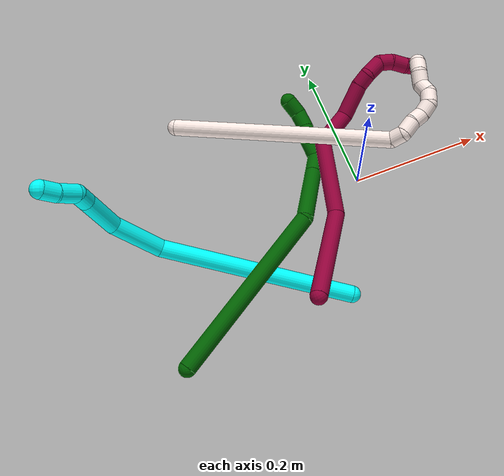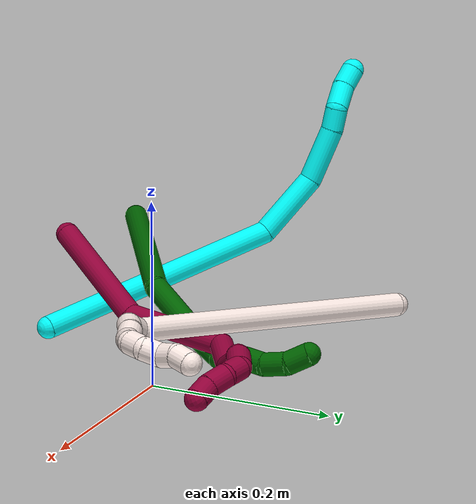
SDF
<sdf version="1.7">
 <world name="default">
  <model name="3">
   <static>0</static>
   <link name="3">
    <collision name="collision-cylinder-e_1_1_4">
     <pose>-0.042562 0.01414 0.134928 -0.104414 -0.304003 0.016009</pose>
     <geometry><cylinder><radius>0.0125</radius><length>0.284373</length></cylinder></geometry>
     <surface>
      <friction><ode><mu>1.16</mu><mu2>1.16</mu2><slip1>0</slip1><slip2>0</slip2></ode></friction>
      <contact><ode><kp>1e+06</kp><kd>1</kd><max_vel>0</max_vel><min_depth>0.001</min_depth></ode></contact>
     </surface>
    </collision>
    <visual name="visual-cylinder-e_1_1_4">
     <pose>-0.042562 0.01414 0.134928 -0.104414 -0.304003 0.016009</pose>
     <geometry><cylinder><radius>0.0125</radius><length>0.284373</length></cylinder></geometry>
     <material><ambient>0.003922 1 0.996078 1</ambient></material>
    </visual>
    <collision name="collision-cylinder-e_2_4_5">
     <pose>-0.107369 0.046316 0.296555 -0.594123 -0.60422 0.190228</pose>
     <geometry><cylinder><radius>0.0125</radius><length>0.078307</length></cylinder></geometry>
     <surface>
      <friction><ode><mu>1.16</mu><mu2>1.16</mu2><slip1>0</slip1><slip2>0</slip2></ode></friction>
      <contact><ode><kp>1e+06</kp><kd>1</kd><max_vel>0</max_vel><min_depth>0.001</min_depth></ode></contact>
     </surface>
    </collision>
    <visual name="visual-cylinder-e_2_4_5">
     <pose>-0.107369 0.046316 0.296555 -0.594123 -0.60422 0.190228</pose>
     <geometry><cylinder><radius>0.0125</radius><length>0.078307</length></cylinder></geometry>
     <material><ambient>0.003922 1 0.996078 1</ambient></material>
    </visual>
    <collision name="collision-cylinder-e_3_5_6">
     <pose>-0.150773 0.084504 0.333492 -1.10075 -0.752487 0.475663</pose>
     <geometry><cylinder><radius>0.0125</radius><length>0.061923</length></cylinder></geometry>
     <surface>
      <friction><ode><mu>1.16</mu><mu2>1.16</mu2><slip1>0</slip1><slip2>0</slip2></ode></friction>
      <contact><ode><kp>1e+06</kp><kd>1</kd><max_vel>0</max_vel><min_depth>0.001</min_depth></ode></contact>
     </surface>
    </collision>
    <visual name="visual-cylinder-e_3_5_6">
     <pose>-0.150773 0.084504 0.333492 -1.10075 -0.752487 0.475663</pose>
     <geometry><cylinder><radius>0.0125</radius><length>0.061923</length></cylinder></geometry>
     <material><ambient>0.003922 1 0.996078 1</ambient></material>
    </visual>
    <collision name="collision-cylinder-e_4_6_7">
     <pose>-0.179329 0.113946 0.346058 -1.32514 -0.657391 0.52017</pose>
     <geometry><cylinder><radius>0.0125</radius><length>0.024204</length></cylinder></geometry>
     <surface>
      <friction><ode><mu>1.16</mu><mu2>1.16</mu2><slip1>0</slip1><slip2>0</slip2></ode></friction>
      <contact><ode><kp>1e+06</kp><kd>1</kd><max_vel>0</max_vel><min_depth>0.001</min_depth></ode></contact>
     </surface>
    </collision>
    <visual name="visual-cylinder-e_4_6_7">
     <pose>-0.179329 0.113946 0.346058 -1.32514 -0.657391 0.52017</pose>
     <geometry><cylinder><radius>0.0125</radius><length>0.024204</length></cylinder></geometry>
     <material><ambient>0.003922 1 0.996078 1</ambient></material>
    </visual>
    <collision name="collision-cylinder-e_5_7_8">
     <pose>-0.189644 0.134137 0.357057 -0.898857 -0.206656 0.099954</pose>
     <geometry><cylinder><radius>0.0125</radius><length>0.028456</length></cylinder></geometry>
     <surface>
      <friction><ode><mu>1.16</mu><mu2>1.16</mu2><slip1>0</slip1><slip2>0</slip2></ode></friction>
      <contact><ode><kp>1e+06</kp><kd>1</kd><max_vel>0</max_vel><min_depth>0.001</min_depth></ode></contact>
     </surface>
    </collision>
    <visual name="visual-cylinder-e_5_7_8">
     <pose>-0.189644 0.134137 0.357057 -0.898857 -0.206656 0.099954</pose>
     <geometry><cylinder><radius>0.0125</radius><length>0.028456</length></cylinder></geometry>
     <material><ambient>0.003922 1 0.996078 1</ambient></material>
    </visual>
    <collision name="collision-cylinder-e_6_8_2">
     <pose>-0.19664 0.152291 0.37347 -0.752837 -0.366816 0.146376</pose>
     <geometry><cylinder><radius>0.0125</radius><length>0.022737</length></cylinder></geometry>
     <surface>
      <friction><ode><mu>1.16</mu><mu2>1.16</mu2><slip1>0</slip1><slip2>0</slip2></ode></friction>
      <contact><ode><kp>1e+06</kp><kd>1</kd><max_vel>0</max_vel><min_depth>0.001</min_depth></ode></contact>
     </surface>
    </collision>
    <visual name="visual-cylinder-e_6_8_2">
     <pose>-0.19664 0.152291 0.37347 -0.752837 -0.366816 0.146376</pose>
     <geometry><cylinder><radius>0.0125</radius><length>0.022737</length></cylinder></geometry>
     <material><ambient>0.003922 1 0.996078 1</ambient></material>
    </visual>
    <collision name="collision-sphere-2">
     <pose>-0.200718 0.159546 0.381214 0 -0 0</pose>
     <geometry><sphere><radius>0.0125</radius></sphere></geometry>
     <surface>
      <friction><ode><mu>1.16</mu><mu2>1.16</mu2><slip1>0</slip1><slip2>0</slip2></ode></friction>
      <contact><ode><kp>1e+06</kp><kd>1</kd><max_vel>0</max_vel><min_depth>0.001</min_depth></ode></contact>
     </surface>
    </collision>
    <visual name="visual-sphere-2">
     <pose>-0.200718 0.159546 0.381214 0 -0 0</pose>
     <geometry><sphere><radius>0.0125</radius></sphere></geometry>
     <material><ambient>0.003922 1 0.996078 1</ambient></material>
    </visual>
    <collision name="collision-sphere-4">
     <pose>-0.085125 0.02828 0.269855 0 -0 0</pose>
     <geometry><sphere><radius>0.0125</radius></sphere></geometry>
     <surface>
      <friction><ode><mu>1.16</mu><mu2>1.16</mu2><slip1>0</slip1><slip2>0</slip2></ode></friction>
      <contact><ode><kp>1e+06</kp><kd>1</kd><max_vel>0</max_vel><min_depth>0.001</min_depth></ode></contact>
     </surface>
    </collision>
    <visual name="visual-sphere-4">
     <pose>-0.085125 0.02828 0.269855 0 -0 0</pose>
     <geometry><sphere><radius>0.0125</radius></sphere></geometry>
     <material><ambient>0.003922 1 0.996078 1</ambient></material>
    </visual>
    <collision name="collision-sphere-1">
     <geometry><sphere><radius>0.0125</radius></sphere></geometry>
     <surface>
      <friction><ode><mu>1.16</mu><mu2>1.16</mu2><slip1>0</slip1><slip2>0</slip2></ode></friction>
      <contact><ode><kp>1e+06</kp><kd>1</kd><max_vel>0</max_vel><min_depth>0.001</min_depth></ode></contact>
     </surface>
    </collision>
    <visual name="visual-sphere-1">
     <geometry><sphere><radius>0.0125</radius></sphere></geometry>
     <material><ambient>0.003922 1 0.996078 1</ambient></material>
    </visual>
    <collision name="collision-sphere-8">
     <pose>-0.192563 0.145035 0.365725 0 -0 0</pose>
     <geometry><sphere><radius>0.0125</radius></sphere></geometry>
     <surface>
      <friction><ode><mu>1.16</mu><mu2>1.16</mu2><slip1>0</slip1><slip2>0</slip2></ode></friction>
      <contact><ode><kp>1e+06</kp><kd>1</kd><max_vel>0</max_vel><min_depth>0.001</min_depth></ode></contact>
     </surface>
    </collision>
    <visual name="visual-sphere-8">
     <pose>-0.192563 0.145035 0.365725 0 -0 0</pose>
     <geometry><sphere><radius>0.0125</radius></sphere></geometry>
     <material><ambient>0.003922 1 0.996078 1</ambient></material>
    </visual>
    <collision name="collision-sphere-5">
     <pose>-0.129613 0.064353 0.323255 0 -0 0</pose>
     <geometry><sphere><radius>0.0125</radius></sphere></geometry>
     <surface>
      <friction><ode><mu>1.16</mu><mu2>1.16</mu2><slip1>0</slip1><slip2>0</slip2></ode></friction>
      <contact><ode><kp>1e+06</kp><kd>1</kd><max_vel>0</max_vel><min_depth>0.001</min_depth></ode></contact>
     </surface>
    </collision>
    <visual name="visual-sphere-5">
     <pose>-0.129613 0.064353 0.323255 0 -0 0</pose>
     <geometry><sphere><radius>0.0125</radius></sphere></geometry>
     <material><ambient>0.003922 1 0.996078 1</ambient></material>
    </visual>
    <collision name="collision-sphere-6">
     <pose>-0.171934 0.104654 0.343729 0 -0 0</pose>
     <geometry><sphere><radius>0.0125</radius></sphere></geometry>
     <surface>
      <friction><ode><mu>1.16</mu><mu2>1.16</mu2><slip1>0</slip1><slip2>0</slip2></ode></friction>
      <contact><ode><kp>1e+06</kp><kd>1</kd><max_vel>0</max_vel><min_depth>0.001</min_depth></ode></contact>
     </surface>
    </collision>
    <visual name="visual-sphere-6">
     <pose>-0.171934 0.104654 0.343729 0 -0 0</pose>
     <geometry><sphere><radius>0.0125</radius></sphere></geometry>
     <material><ambient>0.003922 1 0.996078 1</ambient></material>
    </visual>
    <collision name="collision-sphere-7">
     <pose>-0.186724 0.123238 0.348388 0 -0 0</pose>
     <geometry><sphere><radius>0.0125</radius></sphere></geometry>
     <surface>
      <friction><ode><mu>1.16</mu><mu2>1.16</mu2><slip1>0</slip1><slip2>0</slip2></ode></friction>
      <contact><ode><kp>1e+06</kp><kd>1</kd><max_vel>0</max_vel><min_depth>0.001</min_depth></ode></contact>
     </surface>
    </collision>
    <visual name="visual-sphere-7">
     <pose>-0.186724 0.123238 0.348388 0 -0 0</pose>
     <geometry><sphere><radius>0.0125</radius></sphere></geometry>
     <material><ambient>0.003922 1 0.996078 1</ambient></material>
    </visual>
    <inertial>
     <pose>-0.088111 0.045836 0.218542 0 -0 0</pose>
     <mass>0.5</mass>
     <inertia>
      <ixx>0.001924</ixx>
      <ixy>0</ixy>
      <ixz>0</ixz>
      <iyy>0.002032</iyy>
      <iyz>0</iyz>
      <izz>0.000418</izz>
     </inertia>
    </inertial>
   </link>
   <pose>-0.082686 -0.168681 0.011501 1.6291 0.627486 -1.90577</pose>
  </model>
  <model name="6">
   <static>0</static>
   <link name="6">
    <collision name="collision-cylinder-e_1_1_4">
     <pose>0.058682 0.050016 -0.108417 -2.70936 0.456812 -1.62793</pose>
     <geometry><cylinder><radius>0.0125</radius><length>0.266079</length></cylinder></geometry>
     <surface>
      <friction><ode><mu>1.16</mu><mu2>1.16</mu2><slip1>0</slip1><slip2>0</slip2></ode></friction>
      <contact><ode><kp>1e+06</kp><kd>1</kd><max_vel>0</max_vel><min_depth>0.001</min_depth></ode></contact>
     </surface>
    </collision>
    <visual name="visual-cylinder-e_1_1_4">
     <pose>0.058682 0.050016 -0.108417 -2.70936 0.456812 -1.62793</pose>
     <geometry><cylinder><radius>0.0125</radius><length>0.266079</length></cylinder></geometry>
     <material><ambient>0 0.392157 0.003922 1</ambient></material>
    </visual>
    <collision name="collision-cylinder-e_2_4_5">
     <pose>0.116282 0.135131 -0.249741 -2.32396 -0.022492 0.051909</pose>
     <geometry><cylinder><radius>0.0125</radius><length>0.096249</length></cylinder></geometry>
     <surface>
      <friction><ode><mu>1.16</mu><mu2>1.16</mu2><slip1>0</slip1><slip2>0</slip2></ode></friction>
      <contact><ode><kp>1e+06</kp><kd>1</kd><max_vel>0</max_vel><min_depth>0.001</min_depth></ode></contact>
     </surface>
    </collision>
    <visual name="visual-cylinder-e_2_4_5">
     <pose>0.116282 0.135131 -0.249741 -2.32396 -0.022492 0.051909</pose>
     <geometry><cylinder><radius>0.0125</radius><length>0.096249</length></cylinder></geometry>
     <material><ambient>0 0.392157 0.003922 1</ambient></material>
    </visual>
    <collision name="collision-cylinder-e_3_5_6">
     <pose>0.116858 0.182375 -0.293268 -2.28935 0.102457 -0.224954</pose>
     <geometry><cylinder><radius>0.0125</radius><length>0.032436</length></cylinder></geometry>
     <surface>
      <friction><ode><mu>1.16</mu><mu2>1.16</mu2><slip1>0</slip1><slip2>0</slip2></ode></friction>
      <contact><ode><kp>1e+06</kp><kd>1</kd><max_vel>0</max_vel><min_depth>0.001</min_depth></ode></contact>
     </surface>
    </collision>
    <visual name="visual-cylinder-e_3_5_6">
     <pose>0.116858 0.182375 -0.293268 -2.28935 0.102457 -0.224954</pose>
     <geometry><cylinder><radius>0.0125</radius><length>0.032436</length></cylinder></geometry>
     <material><ambient>0 0.392157 0.003922 1</ambient></material>
    </visual>
    <collision name="collision-cylinder-e_4_6_7">
     <pose>0.121244 0.209563 -0.304759 -1.62866 0.17901 -0.189618</pose>
     <geometry><cylinder><radius>0.0125</radius><length>0.030629</length></cylinder></geometry>
     <surface>
      <friction><ode><mu>1.16</mu><mu2>1.16</mu2><slip1>0</slip1><slip2>0</slip2></ode></friction>
      <contact><ode><kp>1e+06</kp><kd>1</kd><max_vel>0</max_vel><min_depth>0.001</min_depth></ode></contact>
     </surface>
    </collision>
    <visual name="visual-cylinder-e_4_6_7">
     <pose>0.121244 0.209563 -0.304759 -1.62866 0.17901 -0.189618</pose>
     <geometry><cylinder><radius>0.0125</radius><length>0.030629</length></cylinder></geometry>
     <material><ambient>0 0.392157 0.003922 1</ambient></material>
    </visual>
    <collision name="collision-cylinder-e_5_7_8">
     <pose>0.125869 0.235531 -0.309667 -1.92475 0.16162 -0.231489</pose>
     <geometry><cylinder><radius>0.0125</radius><length>0.023598</length></cylinder></geometry>
     <surface>
      <friction><ode><mu>1.16</mu><mu2>1.16</mu2><slip1>0</slip1><slip2>0</slip2></ode></friction>
      <contact><ode><kp>1e+06</kp><kd>1</kd><max_vel>0</max_vel><min_depth>0.001</min_depth></ode></contact>
     </surface>
    </collision>
    <visual name="visual-cylinder-e_5_7_8">
     <pose>0.125869 0.235531 -0.309667 -1.92475 0.16162 -0.231489</pose>
     <geometry><cylinder><radius>0.0125</radius><length>0.023598</length></cylinder></geometry>
     <material><ambient>0 0.392157 0.003922 1</ambient></material>
    </visual>
    <collision name="collision-cylinder-e_6_8_9">
     <pose>0.130772 0.259026 -0.313448 -1.55052 0.234506 -0.229839</pose>
     <geometry><cylinder><radius>0.0125</radius><length>0.025856</length></cylinder></geometry>
     <surface>
      <friction><ode><mu>1.16</mu><mu2>1.16</mu2><slip1>0</slip1><slip2>0</slip2></ode></friction>
      <contact><ode><kp>1e+06</kp><kd>1</kd><max_vel>0</max_vel><min_depth>0.001</min_depth></ode></contact>
     </surface>
    </collision>
    <visual name="visual-cylinder-e_6_8_9">
     <pose>0.130772 0.259026 -0.313448 -1.55052 0.234506 -0.229839</pose>
     <geometry><cylinder><radius>0.0125</radius><length>0.025856</length></cylinder></geometry>
     <material><ambient>0 0.392157 0.003922 1</ambient></material>
    </visual>
    <collision name="collision-cylinder-e_7_9_2">
     <pose>0.13807 0.282363 -0.308311 -1.14506 0.348419 -0.225905</pose>
     <geometry><cylinder><radius>0.0125</radius><length>0.025153</length></cylinder></geometry>
     <surface>
      <friction><ode><mu>1.16</mu><mu2>1.16</mu2><slip1>0</slip1><slip2>0</slip2></ode></friction>
      <contact><ode><kp>1e+06</kp><kd>1</kd><max_vel>0</max_vel><min_depth>0.001</min_depth></ode></contact>
     </surface>
    </collision>
    <visual name="visual-cylinder-e_7_9_2">
     <pose>0.13807 0.282363 -0.308311 -1.14506 0.348419 -0.225905</pose>
     <geometry><cylinder><radius>0.0125</radius><length>0.025153</length></cylinder></geometry>
     <material><ambient>0 0.392157 0.003922 1</ambient></material>
    </visual>
    <collision name="collision-sphere-2">
     <pose>0.142364 0.293129 -0.303429 0 -0 0</pose>
     <geometry><sphere><radius>0.0125</radius></sphere></geometry>
     <surface>
      <friction><ode><mu>1.16</mu><mu2>1.16</mu2><slip1>0</slip1><slip2>0</slip2></ode></friction>
      <contact><ode><kp>1e+06</kp><kd>1</kd><max_vel>0</max_vel><min_depth>0.001</min_depth></ode></contact>
     </surface>
    </collision>
    <visual name="visual-sphere-2">
     <pose>0.142364 0.293129 -0.303429 0 -0 0</pose>
     <geometry><sphere><radius>0.0125</radius></sphere></geometry>
     <material><ambient>0 0.392157 0.003922 1</ambient></material>
    </visual>
    <collision name="collision-sphere-9">
     <pose>0.133776 0.271598 -0.313193 0 -0 0</pose>
     <geometry><sphere><radius>0.0125</radius></sphere></geometry>
     <surface>
      <friction><ode><mu>1.16</mu><mu2>1.16</mu2><slip1>0</slip1><slip2>0</slip2></ode></friction>
      <contact><ode><kp>1e+06</kp><kd>1</kd><max_vel>0</max_vel><min_depth>0.001</min_depth></ode></contact>
     </surface>
    </collision>
    <visual name="visual-sphere-9">
     <pose>0.133776 0.271598 -0.313193 0 -0 0</pose>
     <geometry><sphere><radius>0.0125</radius></sphere></geometry>
     <material><ambient>0 0.392157 0.003922 1</ambient></material>
    </visual>
    <collision name="collision-sphere-4">
     <pose>0.117364 0.100032 -0.216834 0 -0 0</pose>
     <geometry><sphere><radius>0.0125</radius></sphere></geometry>
     <surface>
      <friction><ode><mu>1.16</mu><mu2>1.16</mu2><slip1>0</slip1><slip2>0</slip2></ode></friction>
      <contact><ode><kp>1e+06</kp><kd>1</kd><max_vel>0</max_vel><min_depth>0.001</min_depth></ode></contact>
     </surface>
    </collision>
    <visual name="visual-sphere-4">
     <pose>0.117364 0.100032 -0.216834 0 -0 0</pose>
     <geometry><sphere><radius>0.0125</radius></sphere></geometry>
     <material><ambient>0 0.392157 0.003922 1</ambient></material>
    </visual>
    <collision name="collision-sphere-1">
     <geometry><sphere><radius>0.0125</radius></sphere></geometry>
     <surface>
      <friction><ode><mu>1.16</mu><mu2>1.16</mu2><slip1>0</slip1><slip2>0</slip2></ode></friction>
      <contact><ode><kp>1e+06</kp><kd>1</kd><max_vel>0</max_vel><min_depth>0.001</min_depth></ode></contact>
     </surface>
    </collision>
    <visual name="visual-sphere-1">
     <geometry><sphere><radius>0.0125</radius></sphere></geometry>
     <material><ambient>0 0.392157 0.003922 1</ambient></material>
    </visual>
    <collision name="collision-sphere-8">
     <pose>0.127768 0.246454 -0.313703 0 -0 0</pose>
     <geometry><sphere><radius>0.0125</radius></sphere></geometry>
     <surface>
      <friction><ode><mu>1.16</mu><mu2>1.16</mu2><slip1>0</slip1><slip2>0</slip2></ode></friction>
      <contact><ode><kp>1e+06</kp><kd>1</kd><max_vel>0</max_vel><min_depth>0.001</min_depth></ode></contact>
     </surface>
    </collision>
    <visual name="visual-sphere-8">
     <pose>0.127768 0.246454 -0.313703 0 -0 0</pose>
     <geometry><sphere><radius>0.0125</radius></sphere></geometry>
     <material><ambient>0 0.392157 0.003922 1</ambient></material>
    </visual>
    <collision name="collision-sphere-5">
     <pose>0.1152 0.170231 -0.282647 0 -0 0</pose>
     <geometry><sphere><radius>0.0125</radius></sphere></geometry>
     <surface>
      <friction><ode><mu>1.16</mu><mu2>1.16</mu2><slip1>0</slip1><slip2>0</slip2></ode></friction>
      <contact><ode><kp>1e+06</kp><kd>1</kd><max_vel>0</max_vel><min_depth>0.001</min_depth></ode></contact>
     </surface>
    </collision>
    <visual name="visual-sphere-5">
     <pose>0.1152 0.170231 -0.282647 0 -0 0</pose>
     <geometry><sphere><radius>0.0125</radius></sphere></geometry>
     <material><ambient>0 0.392157 0.003922 1</ambient></material>
    </visual>
    <collision name="collision-sphere-6">
     <pose>0.118517 0.194519 -0.303888 0 -0 0</pose>
     <geometry><sphere><radius>0.0125</radius></sphere></geometry>
     <surface>
      <friction><ode><mu>1.16</mu><mu2>1.16</mu2><slip1>0</slip1><slip2>0</slip2></ode></friction>
      <contact><ode><kp>1e+06</kp><kd>1</kd><max_vel>0</max_vel><min_depth>0.001</min_depth></ode></contact>
     </surface>
    </collision>
    <visual name="visual-sphere-6">
     <pose>0.118517 0.194519 -0.303888 0 -0 0</pose>
     <geometry><sphere><radius>0.0125</radius></sphere></geometry>
     <material><ambient>0 0.392157 0.003922 1</ambient></material>
    </visual>
    <collision name="collision-sphere-7">
     <pose>0.123971 0.224608 -0.305631 0 -0 0</pose>
     <geometry><sphere><radius>0.0125</radius></sphere></geometry>
     <surface>
      <friction><ode><mu>1.16</mu><mu2>1.16</mu2><slip1>0</slip1><slip2>0</slip2></ode></friction>
      <contact><ode><kp>1e+06</kp><kd>1</kd><max_vel>0</max_vel><min_depth>0.001</min_depth></ode></contact>
     </surface>
    </collision>
    <visual name="visual-sphere-7">
     <pose>0.123971 0.224608 -0.305631 0 -0 0</pose>
     <geometry><sphere><radius>0.0125</radius></sphere></geometry>
     <material><ambient>0 0.392157 0.003922 1</ambient></material>
    </visual>
    <inertial>
     <pose>0.088269 0.116013 -0.189798 0 -0 0</pose>
     <mass>0.5</mass>
     <inertia>
      <ixx>-0.001393</ixx>
      <ixy>0</ixy>
      <ixz>0</ixz>
      <iyy>-0.001074</iyy>
      <iyz>0</iyz>
      <izz>-0.001386</izz>
     </inertia>
    </inertial>
   </link>
   <pose>-0.33715 -0.19307 0.061078 -0.108266 -1.11104 0.267781</pose>
  </model>
  <model name="8">
   <static>0</static>
   <link name="8">
    <collision name="collision-cylinder-e_1_1_4">
     <pose>0.01345 0.066275 -0.032895 -2.03151 0.179819 -0.288763</pose>
     <geometry><cylinder><radius>0.0125</radius><length>0.150403</length></cylinder></geometry>
     <surface>
      <friction><ode><mu>1.16</mu><mu2>1.16</mu2><slip1>0</slip1><slip2>0</slip2></ode></friction>
      <contact><ode><kp>1e+06</kp><kd>1</kd><max_vel>0</max_vel><min_depth>0.001</min_depth></ode></contact>
     </surface>
    </collision>
    <visual name="visual-cylinder-e_1_1_4">
     <pose>0.01345 0.066275 -0.032895 -2.03151 0.179819 -0.288763</pose>
     <geometry><cylinder><radius>0.0125</radius><length>0.150403</length></cylinder></geometry>
     <material><ambient>0.584314 0 0.227451 1</ambient></material>
    </visual>
    <collision name="collision-cylinder-e_2_4_5">
     <pose>0.037951 0.168814 -0.114411 -2.50074 0.18021 -0.531618</pose>
     <geometry><cylinder><radius>0.0125</radius><length>0.123309</length></cylinder></geometry>
     <surface>
      <friction><ode><mu>1.16</mu><mu2>1.16</mu2><slip1>0</slip1><slip2>0</slip2></ode></friction>
      <contact><ode><kp>1e+06</kp><kd>1</kd><max_vel>0</max_vel><min_depth>0.001</min_depth></ode></contact>
     </surface>
    </collision>
    <visual name="visual-cylinder-e_2_4_5">
     <pose>0.037951 0.168814 -0.114411 -2.50074 0.18021 -0.531618</pose>
     <geometry><cylinder><radius>0.0125</radius><length>0.123309</length></cylinder></geometry>
     <material><ambient>0.584314 0 0.227451 1</ambient></material>
    </visual>
    <collision name="collision-cylinder-e_3_5_6">
     <pose>0.039692 0.231754 -0.172474 -1.91101 -0.317826 0.445935</pose>
     <geometry><cylinder><radius>0.0125</radius><length>0.059577</length></cylinder></geometry>
     <surface>
      <friction><ode><mu>1.16</mu><mu2>1.16</mu2><slip1>0</slip1><slip2>0</slip2></ode></friction>
      <contact><ode><kp>1e+06</kp><kd>1</kd><max_vel>0</max_vel><min_depth>0.001</min_depth></ode></contact>
     </surface>
    </collision>
    <visual name="visual-cylinder-e_3_5_6">
     <pose>0.039692 0.231754 -0.172474 -1.91101 -0.317826 0.445935</pose>
     <geometry><cylinder><radius>0.0125</radius><length>0.059577</length></cylinder></geometry>
     <material><ambient>0.584314 0 0.227451 1</ambient></material>
    </visual>
    <collision name="collision-cylinder-e_4_6_7">
     <pose>0.01497 0.272626 -0.197596 -2.40579 -0.629709 1.40311</pose>
     <geometry><cylinder><radius>0.0125</radius><length>0.052344</length></cylinder></geometry>
     <surface>
      <friction><ode><mu>1.16</mu><mu2>1.16</mu2><slip1>0</slip1><slip2>0</slip2></ode></friction>
      <contact><ode><kp>1e+06</kp><kd>1</kd><max_vel>0</max_vel><min_depth>0.001</min_depth></ode></contact>
     </surface>
    </collision>
    <visual name="visual-cylinder-e_4_6_7">
     <pose>0.01497 0.272626 -0.197596 -2.40579 -0.629709 1.40311</pose>
     <geometry><cylinder><radius>0.0125</radius><length>0.052344</length></cylinder></geometry>
     <material><ambient>0.584314 0 0.227451 1</ambient></material>
    </visual>
    <collision name="collision-cylinder-e_5_7_8">
     <pose>-0.00836 0.292488 -0.217673 -2.23081 -0.834804 1.47173</pose>
     <geometry><cylinder><radius>0.0125</radius><length>0.021364</length></cylinder></geometry>
     <surface>
      <friction><ode><mu>1.16</mu><mu2>1.16</mu2><slip1>0</slip1><slip2>0</slip2></ode></friction>
      <contact><ode><kp>1e+06</kp><kd>1</kd><max_vel>0</max_vel><min_depth>0.001</min_depth></ode></contact>
     </surface>
    </collision>
    <visual name="visual-cylinder-e_5_7_8">
     <pose>-0.00836 0.292488 -0.217673 -2.23081 -0.834804 1.47173</pose>
     <geometry><cylinder><radius>0.0125</radius><length>0.021364</length></cylinder></geometry>
     <material><ambient>0.584314 0 0.227451 1</ambient></material>
    </visual>
    <collision name="collision-cylinder-e_6_8_9">
     <pose>-0.021331 0.311254 -0.225707 -1.84166 -0.355925 0.46469</pose>
     <geometry><cylinder><radius>0.0125</radius><length>0.02901</length></cylinder></geometry>
     <surface>
      <friction><ode><mu>1.16</mu><mu2>1.16</mu2><slip1>0</slip1><slip2>0</slip2></ode></friction>
      <contact><ode><kp>1e+06</kp><kd>1</kd><max_vel>0</max_vel><min_depth>0.001</min_depth></ode></contact>
     </surface>
    </collision>
    <visual name="visual-cylinder-e_6_8_9">
     <pose>-0.021331 0.311254 -0.225707 -1.84166 -0.355925 0.46469</pose>
     <geometry><cylinder><radius>0.0125</radius><length>0.02901</length></cylinder></geometry>
     <material><ambient>0.584314 0 0.227451 1</ambient></material>
    </visual>
    <collision name="collision-cylinder-e_7_9_10">
     <pose>-0.032593 0.331822 -0.225334 -1.07782 -0.632066 0.386179</pose>
     <geometry><cylinder><radius>0.0125</radius><length>0.021014</length></cylinder></geometry>
     <surface>
      <friction><ode><mu>1.16</mu><mu2>1.16</mu2><slip1>0</slip1><slip2>0</slip2></ode></friction>
      <contact><ode><kp>1e+06</kp><kd>1</kd><max_vel>0</max_vel><min_depth>0.001</min_depth></ode></contact>
     </surface>
    </collision>
    <visual name="visual-cylinder-e_7_9_10">
     <pose>-0.032593 0.331822 -0.225334 -1.07782 -0.632066 0.386179</pose>
     <geometry><cylinder><radius>0.0125</radius><length>0.021014</length></cylinder></geometry>
     <material><ambient>0.584314 0 0.227451 1</ambient></material>
    </visual>
    <collision name="collision-cylinder-e_8_10_11">
     <pose>-0.043553 0.346389 -0.213809 -0.757136 -0.430949 0.173677</pose>
     <geometry><cylinder><radius>0.0125</radius><length>0.022753</length></cylinder></geometry>
     <surface>
      <friction><ode><mu>1.16</mu><mu2>1.16</mu2><slip1>0</slip1><slip2>0</slip2></ode></friction>
      <contact><ode><kp>1e+06</kp><kd>1</kd><max_vel>0</max_vel><min_depth>0.001</min_depth></ode></contact>
     </surface>
    </collision>
    <visual name="visual-cylinder-e_8_10_11">
     <pose>-0.043553 0.346389 -0.213809 -0.757136 -0.430949 0.173677</pose>
     <geometry><cylinder><radius>0.0125</radius><length>0.022753</length></cylinder></geometry>
     <material><ambient>0.584314 0 0.227451 1</ambient></material>
    </visual>
    <collision name="collision-cylinder-e_9_11_2">
     <pose>-0.051365 0.361686 -0.201226 -1.01686 -0.307306 0.172195</pose>
     <geometry><cylinder><radius>0.0125</radius><length>0.020224</length></cylinder></geometry>
     <surface>
      <friction><ode><mu>1.16</mu><mu2>1.16</mu2><slip1>0</slip1><slip2>0</slip2></ode></friction>
      <contact><ode><kp>1e+06</kp><kd>1</kd><max_vel>0</max_vel><min_depth>0.001</min_depth></ode></contact>
     </surface>
    </collision>
    <visual name="visual-cylinder-e_9_11_2">
     <pose>-0.051365 0.361686 -0.201226 -1.01686 -0.307306 0.172195</pose>
     <geometry><cylinder><radius>0.0125</radius><length>0.020224</length></cylinder></geometry>
     <material><ambient>0.584314 0 0.227451 1</ambient></material>
    </visual>
    <collision name="collision-sphere-2">
     <pose>-0.054424 0.369883 -0.196156 0 -0 0</pose>
     <geometry><sphere><radius>0.0125</radius></sphere></geometry>
     <surface>
      <friction><ode><mu>1.16</mu><mu2>1.16</mu2><slip1>0</slip1><slip2>0</slip2></ode></friction>
      <contact><ode><kp>1e+06</kp><kd>1</kd><max_vel>0</max_vel><min_depth>0.001</min_depth></ode></contact>
     </surface>
    </collision>
    <visual name="visual-sphere-2">
     <pose>-0.054424 0.369883 -0.196156 0 -0 0</pose>
     <geometry><sphere><radius>0.0125</radius></sphere></geometry>
     <material><ambient>0.584314 0 0.227451 1</ambient></material>
    </visual>
    <collision name="collision-sphere-11">
     <pose>-0.048306 0.353489 -0.206296 0 -0 0</pose>
     <geometry><sphere><radius>0.0125</radius></sphere></geometry>
     <surface>
      <friction><ode><mu>1.16</mu><mu2>1.16</mu2><slip1>0</slip1><slip2>0</slip2></ode></friction>
      <contact><ode><kp>1e+06</kp><kd>1</kd><max_vel>0</max_vel><min_depth>0.001</min_depth></ode></contact>
     </surface>
    </collision>
    <visual name="visual-sphere-11">
     <pose>-0.048306 0.353489 -0.206296 0 -0 0</pose>
     <geometry><sphere><radius>0.0125</radius></sphere></geometry>
     <material><ambient>0.584314 0 0.227451 1</ambient></material>
    </visual>
    <collision name="collision-sphere-10">
     <pose>-0.038801 0.33929 -0.221322 0 -0 0</pose>
     <geometry><sphere><radius>0.0125</radius></sphere></geometry>
     <surface>
      <friction><ode><mu>1.16</mu><mu2>1.16</mu2><slip1>0</slip1><slip2>0</slip2></ode></friction>
      <contact><ode><kp>1e+06</kp><kd>1</kd><max_vel>0</max_vel><min_depth>0.001</min_depth></ode></contact>
     </surface>
    </collision>
    <visual name="visual-sphere-10">
     <pose>-0.038801 0.33929 -0.221322 0 -0 0</pose>
     <geometry><sphere><radius>0.0125</radius></sphere></geometry>
     <material><ambient>0.584314 0 0.227451 1</ambient></material>
    </visual>
    <collision name="collision-sphere-9">
     <pose>-0.026386 0.324354 -0.229345 0 -0 0</pose>
     <geometry><sphere><radius>0.0125</radius></sphere></geometry>
     <surface>
      <friction><ode><mu>1.16</mu><mu2>1.16</mu2><slip1>0</slip1><slip2>0</slip2></ode></friction>
      <contact><ode><kp>1e+06</kp><kd>1</kd><max_vel>0</max_vel><min_depth>0.001</min_depth></ode></contact>
     </surface>
    </collision>
    <visual name="visual-sphere-9">
     <pose>-0.026386 0.324354 -0.229345 0 -0 0</pose>
     <geometry><sphere><radius>0.0125</radius></sphere></geometry>
     <material><ambient>0.584314 0 0.227451 1</ambient></material>
    </visual>
    <collision name="collision-sphere-4">
     <pose>0.0269 0.132549 -0.065789 0 -0 0</pose>
     <geometry><sphere><radius>0.0125</radius></sphere></geometry>
     <surface>
      <friction><ode><mu>1.16</mu><mu2>1.16</mu2><slip1>0</slip1><slip2>0</slip2></ode></friction>
      <contact><ode><kp>1e+06</kp><kd>1</kd><max_vel>0</max_vel><min_depth>0.001</min_depth></ode></contact>
     </surface>
    </collision>
    <visual name="visual-sphere-4">
     <pose>0.0269 0.132549 -0.065789 0 -0 0</pose>
     <geometry><sphere><radius>0.0125</radius></sphere></geometry>
     <material><ambient>0.584314 0 0.227451 1</ambient></material>
    </visual>
    <collision name="collision-sphere-1">
     <geometry><sphere><radius>0.0125</radius></sphere></geometry>
     <surface>
      <friction><ode><mu>1.16</mu><mu2>1.16</mu2><slip1>0</slip1><slip2>0</slip2></ode></friction>
      <contact><ode><kp>1e+06</kp><kd>1</kd><max_vel>0</max_vel><min_depth>0.001</min_depth></ode></contact>
     </surface>
    </collision>
    <visual name="visual-sphere-1">
     <geometry><sphere><radius>0.0125</radius></sphere></geometry>
     <material><ambient>0.584314 0 0.227451 1</ambient></material>
    </visual>
    <collision name="collision-sphere-8">
     <pose>-0.016277 0.298154 -0.22207 0 -0 0</pose>
     <geometry><sphere><radius>0.0125</radius></sphere></geometry>
     <surface>
      <friction><ode><mu>1.16</mu><mu2>1.16</mu2><slip1>0</slip1><slip2>0</slip2></ode></friction>
      <contact><ode><kp>1e+06</kp><kd>1</kd><max_vel>0</max_vel><min_depth>0.001</min_depth></ode></contact>
     </surface>
    </collision>
    <visual name="visual-sphere-8">
     <pose>-0.016277 0.298154 -0.22207 0 -0 0</pose>
     <geometry><sphere><radius>0.0125</radius></sphere></geometry>
     <material><ambient>0.584314 0 0.227451 1</ambient></material>
    </visual>
    <collision name="collision-sphere-5">
     <pose>0.049001 0.205079 -0.163032 0 -0 0</pose>
     <geometry><sphere><radius>0.0125</radius></sphere></geometry>
     <surface>
      <friction><ode><mu>1.16</mu><mu2>1.16</mu2><slip1>0</slip1><slip2>0</slip2></ode></friction>
      <contact><ode><kp>1e+06</kp><kd>1</kd><max_vel>0</max_vel><min_depth>0.001</min_depth></ode></contact>
     </surface>
    </collision>
    <visual name="visual-sphere-5">
     <pose>0.049001 0.205079 -0.163032 0 -0 0</pose>
     <geometry><sphere><radius>0.0125</radius></sphere></geometry>
     <material><ambient>0.584314 0 0.227451 1</ambient></material>
    </visual>
    <collision name="collision-sphere-6">
     <pose>0.030383 0.258429 -0.181916 0 -0 0</pose>
     <geometry><sphere><radius>0.0125</radius></sphere></geometry>
     <surface>
      <friction><ode><mu>1.16</mu><mu2>1.16</mu2><slip1>0</slip1><slip2>0</slip2></ode></friction>
      <contact><ode><kp>1e+06</kp><kd>1</kd><max_vel>0</max_vel><min_depth>0.001</min_depth></ode></contact>
     </surface>
    </collision>
    <visual name="visual-sphere-6">
     <pose>0.030383 0.258429 -0.181916 0 -0 0</pose>
     <geometry><sphere><radius>0.0125</radius></sphere></geometry>
     <material><ambient>0.584314 0 0.227451 1</ambient></material>
    </visual>
    <collision name="collision-sphere-7">
     <pose>-0.000443 0.286823 -0.213276 0 -0 0</pose>
     <geometry><sphere><radius>0.0125</radius></sphere></geometry>
     <surface>
      <friction><ode><mu>1.16</mu><mu2>1.16</mu2><slip1>0</slip1><slip2>0</slip2></ode></friction>
      <contact><ode><kp>1e+06</kp><kd>1</kd><max_vel>0</max_vel><min_depth>0.001</min_depth></ode></contact>
     </surface>
    </collision>
    <visual name="visual-sphere-7">
     <pose>-0.000443 0.286823 -0.213276 0 -0 0</pose>
     <geometry><sphere><radius>0.0125</radius></sphere></geometry>
     <material><ambient>0.584314 0 0.227451 1</ambient></material>
    </visual>
    <inertial>
     <pose>0.012678 0.192619 -0.129084 0 -0 0</pose>
     <mass>0.5</mass>
     <inertia>
      <ixx>0.000293</ixx>
      <ixy>0</ixy>
      <ixz>0</ixz>
      <iyy>-0.000318</iyy>
      <iyz>0</iyz>
      <izz>-0.000459</izz>
     </inertia>
    </inertial>
   </link>
   <pose>-0.141087 -0.175333 0.099417 -2.36128 0.836713 2.67502</pose>
  </model>
  <model name="11">
   <static>0</static>
   <link name="11">
    <collision name="collision-cylinder-e_1_1_4">
     <pose>0.144709 -0.043486 0.072706 0.539025 1.04115 0.314135</pose>
     <geometry><cylinder><radius>0.0125</radius><length>0.335367</length></cylinder></geometry>
     <surface>
      <friction><ode><mu>1.16</mu><mu2>1.16</mu2><slip1>0</slip1><slip2>0</slip2></ode></friction>
      <contact><ode><kp>1e+06</kp><kd>1</kd><max_vel>0</max_vel><min_depth>0.001</min_depth></ode></contact>
     </surface>
    </collision>
    <visual name="visual-cylinder-e_1_1_4">
     <pose>0.144709 -0.043486 0.072706 0.539025 1.04115 0.314135</pose>
     <geometry><cylinder><radius>0.0125</radius><length>0.335367</length></cylinder></geometry>
     <material><ambient>1 0.933333 0.909804 1</ambient></material>
    </visual>
    <collision name="collision-cylinder-e_2_4_5">
     <pose>0.293933 -0.091792 0.153327 0.547047 0.453396 0.129247</pose>
     <geometry><cylinder><radius>0.0125</radius><length>0.020619</length></cylinder></geometry>
     <surface>
      <friction><ode><mu>1.16</mu><mu2>1.16</mu2><slip1>0</slip1><slip2>0</slip2></ode></friction>
      <contact><ode><kp>1e+06</kp><kd>1</kd><max_vel>0</max_vel><min_depth>0.001</min_depth></ode></contact>
     </surface>
    </collision>
    <visual name="visual-cylinder-e_2_4_5">
     <pose>0.293933 -0.091792 0.153327 0.547047 0.453396 0.129247</pose>
     <geometry><cylinder><radius>0.0125</radius><length>0.020619</length></cylinder></geometry>
     <material><ambient>1 0.933333 0.909804 1</ambient></material>
    </visual>
    <collision name="collision-cylinder-e_3_5_6">
     <pose>0.300327 -0.094202 0.172712 -0.207215 0.158919 -0.016559</pose>
     <geometry><cylinder><radius>0.0125</radius><length>0.023739</length></cylinder></geometry>
     <surface>
      <friction><ode><mu>1.16</mu><mu2>1.16</mu2><slip1>0</slip1><slip2>0</slip2></ode></friction>
      <contact><ode><kp>1e+06</kp><kd>1</kd><max_vel>0</max_vel><min_depth>0.001</min_depth></ode></contact>
     </surface>
    </collision>
    <visual name="visual-cylinder-e_3_5_6">
     <pose>0.300327 -0.094202 0.172712 -0.207215 0.158919 -0.016559</pose>
     <geometry><cylinder><radius>0.0125</radius><length>0.023739</length></cylinder></geometry>
     <material><ambient>1 0.933333 0.909804 1</ambient></material>
    </visual>
    <collision name="collision-cylinder-e_4_6_7">
     <pose>0.306027 -0.088826 0.19301 -0.323918 0.389334 -0.064407</pose>
     <geometry><cylinder><radius>0.0125</radius><length>0.020135</length></cylinder></geometry>
     <surface>
      <friction><ode><mu>1.16</mu><mu2>1.16</mu2><slip1>0</slip1><slip2>0</slip2></ode></friction>
      <contact><ode><kp>1e+06</kp><kd>1</kd><max_vel>0</max_vel><min_depth>0.001</min_depth></ode></contact>
     </surface>
    </collision>
    <visual name="visual-cylinder-e_4_6_7">
     <pose>0.306027 -0.088826 0.19301 -0.323918 0.389334 -0.064407</pose>
     <geometry><cylinder><radius>0.0125</radius><length>0.020135</length></cylinder></geometry>
     <material><ambient>1 0.933333 0.909804 1</ambient></material>
    </visual>
    <collision name="collision-cylinder-e_5_7_8">
     <pose>0.31063 -0.084853 0.211763 -0.101289 0.078232 -0.003967</pose>
     <geometry><cylinder><radius>0.0125</radius><length>0.02001</length></cylinder></geometry>
     <surface>
      <friction><ode><mu>1.16</mu><mu2>1.16</mu2><slip1>0</slip1><slip2>0</slip2></ode></friction>
      <contact><ode><kp>1e+06</kp><kd>1</kd><max_vel>0</max_vel><min_depth>0.001</min_depth></ode></contact>
     </surface>
    </collision>
    <visual name="visual-cylinder-e_5_7_8">
     <pose>0.31063 -0.084853 0.211763 -0.101289 0.078232 -0.003967</pose>
     <geometry><cylinder><radius>0.0125</radius><length>0.02001</length></cylinder></geometry>
     <material><ambient>1 0.933333 0.909804 1</ambient></material>
    </visual>
    <collision name="collision-cylinder-e_6_8_9">
     <pose>0.307599 -0.079279 0.229747 -0.515363 -0.390513 0.10415</pose>
     <geometry><cylinder><radius>0.0125</radius><length>0.020036</length></cylinder></geometry>
     <surface>
      <friction><ode><mu>1.16</mu><mu2>1.16</mu2><slip1>0</slip1><slip2>0</slip2></ode></friction>
      <contact><ode><kp>1e+06</kp><kd>1</kd><max_vel>0</max_vel><min_depth>0.001</min_depth></ode></contact>
     </surface>
    </collision>
    <visual name="visual-cylinder-e_6_8_9">
     <pose>0.307599 -0.079279 0.229747 -0.515363 -0.390513 0.10415</pose>
     <geometry><cylinder><radius>0.0125</radius><length>0.020036</length></cylinder></geometry>
     <material><ambient>1 0.933333 0.909804 1</ambient></material>
    </visual>
    <collision name="collision-cylinder-e_7_9_10">
     <pose>0.296932 -0.068278 0.241351 -1.06751 -0.75065 0.457537</pose>
     <geometry><cylinder><radius>0.0125</radius><length>0.020093</length></cylinder></geometry>
     <surface>
      <friction><ode><mu>1.16</mu><mu2>1.16</mu2><slip1>0</slip1><slip2>0</slip2></ode></friction>
      <contact><ode><kp>1e+06</kp><kd>1</kd><max_vel>0</max_vel><min_depth>0.001</min_depth></ode></contact>
     </surface>
    </collision>
    <visual name="visual-cylinder-e_7_9_10">
     <pose>0.296932 -0.068278 0.241351 -1.06751 -0.75065 0.457537</pose>
     <geometry><cylinder><radius>0.0125</radius><length>0.020093</length></cylinder></geometry>
     <material><ambient>1 0.933333 0.909804 1</ambient></material>
    </visual>
    <collision name="collision-cylinder-e_8_10_11">
     <pose>0.284397 -0.059652 0.252827 -0.269319 -0.604253 0.084399</pose>
     <geometry><cylinder><radius>0.0125</radius><length>0.02</length></cylinder></geometry>
     <surface>
      <friction><ode><mu>1.16</mu><mu2>1.16</mu2><slip1>0</slip1><slip2>0</slip2></ode></friction>
      <contact><ode><kp>1e+06</kp><kd>1</kd><max_vel>0</max_vel><min_depth>0.001</min_depth></ode></contact>
     </surface>
    </collision>
    <visual name="visual-cylinder-e_8_10_11">
     <pose>0.284397 -0.059652 0.252827 -0.269319 -0.604253 0.084399</pose>
     <geometry><cylinder><radius>0.0125</radius><length>0.02</length></cylinder></geometry>
     <material><ambient>1 0.933333 0.909804 1</ambient></material>
    </visual>
    <collision name="collision-cylinder-e_9_11_2">
     <pose>0.274811 -0.051864 0.268069 -0.653633 -0.401112 0.137601</pose>
     <geometry><cylinder><radius>0.0125</radius><length>0.020001</length></cylinder></geometry>
     <surface>
      <friction><ode><mu>1.16</mu><mu2>1.16</mu2><slip1>0</slip1><slip2>0</slip2></ode></friction>
      <contact><ode><kp>1e+06</kp><kd>1</kd><max_vel>0</max_vel><min_depth>0.001</min_depth></ode></contact>
     </surface>
    </collision>
    <visual name="visual-cylinder-e_9_11_2">
     <pose>0.274811 -0.051864 0.268069 -0.653633 -0.401112 0.137601</pose>
     <geometry><cylinder><radius>0.0125</radius><length>0.020001</length></cylinder></geometry>
     <material><ambient>1 0.933333 0.909804 1</ambient></material>
    </visual>
    <collision name="collision-sphere-2">
     <pose>0.270907 -0.046266 0.275377 0 -0 0</pose>
     <geometry><sphere><radius>0.0125</radius></sphere></geometry>
     <surface>
      <friction><ode><mu>1.16</mu><mu2>1.16</mu2><slip1>0</slip1><slip2>0</slip2></ode></friction>
      <contact><ode><kp>1e+06</kp><kd>1</kd><max_vel>0</max_vel><min_depth>0.001</min_depth></ode></contact>
     </surface>
    </collision>
    <visual name="visual-sphere-2">
     <pose>0.270907 -0.046266 0.275377 0 -0 0</pose>
     <geometry><sphere><radius>0.0125</radius></sphere></geometry>
     <material><ambient>1 0.933333 0.909804 1</ambient></material>
    </visual>
    <collision name="collision-sphere-11">
     <pose>0.278716 -0.057463 0.26076 0 -0 0</pose>
     <geometry><sphere><radius>0.0125</radius></sphere></geometry>
     <surface>
      <friction><ode><mu>1.16</mu><mu2>1.16</mu2><slip1>0</slip1><slip2>0</slip2></ode></friction>
      <contact><ode><kp>1e+06</kp><kd>1</kd><max_vel>0</max_vel><min_depth>0.001</min_depth></ode></contact>
     </surface>
    </collision>
    <visual name="visual-sphere-11">
     <pose>0.278716 -0.057463 0.26076 0 -0 0</pose>
     <geometry><sphere><radius>0.0125</radius></sphere></geometry>
     <material><ambient>1 0.933333 0.909804 1</ambient></material>
    </visual>
    <collision name="collision-sphere-10">
     <pose>0.290079 -0.061842 0.244894 0 -0 0</pose>
     <geometry><sphere><radius>0.0125</radius></sphere></geometry>
     <surface>
      <friction><ode><mu>1.16</mu><mu2>1.16</mu2><slip1>0</slip1><slip2>0</slip2></ode></friction>
      <contact><ode><kp>1e+06</kp><kd>1</kd><max_vel>0</max_vel><min_depth>0.001</min_depth></ode></contact>
     </surface>
    </collision>
    <visual name="visual-sphere-10">
     <pose>0.290079 -0.061842 0.244894 0 -0 0</pose>
     <geometry><sphere><radius>0.0125</radius></sphere></geometry>
     <material><ambient>1 0.933333 0.909804 1</ambient></material>
    </visual>
    <collision name="collision-sphere-9">
     <pose>0.303785 -0.074713 0.237808 0 -0 0</pose>
     <geometry><sphere><radius>0.0125</radius></sphere></geometry>
     <surface>
      <friction><ode><mu>1.16</mu><mu2>1.16</mu2><slip1>0</slip1><slip2>0</slip2></ode></friction>
      <contact><ode><kp>1e+06</kp><kd>1</kd><max_vel>0</max_vel><min_depth>0.001</min_depth></ode></contact>
     </surface>
    </collision>
    <visual name="visual-sphere-9">
     <pose>0.303785 -0.074713 0.237808 0 -0 0</pose>
     <geometry><sphere><radius>0.0125</radius></sphere></geometry>
     <material><ambient>1 0.933333 0.909804 1</ambient></material>
    </visual>
    <collision name="collision-sphere-4">
     <pose>0.289417 -0.086971 0.145412 0 -0 0</pose>
     <geometry><sphere><radius>0.0125</radius></sphere></geometry>
     <surface>
      <friction><ode><mu>1.16</mu><mu2>1.16</mu2><slip1>0</slip1><slip2>0</slip2></ode></friction>
      <contact><ode><kp>1e+06</kp><kd>1</kd><max_vel>0</max_vel><min_depth>0.001</min_depth></ode></contact>
     </surface>
    </collision>
    <visual name="visual-sphere-4">
     <pose>0.289417 -0.086971 0.145412 0 -0 0</pose>
     <geometry><sphere><radius>0.0125</radius></sphere></geometry>
     <material><ambient>1 0.933333 0.909804 1</ambient></material>
    </visual>
    <collision name="collision-sphere-1">
     <geometry><sphere><radius>0.0125</radius></sphere></geometry>
     <surface>
      <friction><ode><mu>1.16</mu><mu2>1.16</mu2><slip1>0</slip1><slip2>0</slip2></ode></friction>
      <contact><ode><kp>1e+06</kp><kd>1</kd><max_vel>0</max_vel><min_depth>0.001</min_depth></ode></contact>
     </surface>
    </collision>
    <visual name="visual-sphere-1">
     <geometry><sphere><radius>0.0125</radius></sphere></geometry>
     <material><ambient>1 0.933333 0.909804 1</ambient></material>
    </visual>
    <collision name="collision-sphere-8">
     <pose>0.311412 -0.083845 0.221686 0 -0 0</pose>
     <geometry><sphere><radius>0.0125</radius></sphere></geometry>
     <surface>
      <friction><ode><mu>1.16</mu><mu2>1.16</mu2><slip1>0</slip1><slip2>0</slip2></ode></friction>
      <contact><ode><kp>1e+06</kp><kd>1</kd><max_vel>0</max_vel><min_depth>0.001</min_depth></ode></contact>
     </surface>
    </collision>
    <visual name="visual-sphere-8">
     <pose>0.311412 -0.083845 0.221686 0 -0 0</pose>
     <geometry><sphere><radius>0.0125</radius></sphere></geometry>
     <material><ambient>1 0.933333 0.909804 1</ambient></material>
    </visual>
    <collision name="collision-sphere-5">
     <pose>0.298449 -0.096613 0.161242 0 -0 0</pose>
     <geometry><sphere><radius>0.0125</radius></sphere></geometry>
     <surface>
      <friction><ode><mu>1.16</mu><mu2>1.16</mu2><slip1>0</slip1><slip2>0</slip2></ode></friction>
      <contact><ode><kp>1e+06</kp><kd>1</kd><max_vel>0</max_vel><min_depth>0.001</min_depth></ode></contact>
     </surface>
    </collision>
    <visual name="visual-sphere-5">
     <pose>0.298449 -0.096613 0.161242 0 -0 0</pose>
     <geometry><sphere><radius>0.0125</radius></sphere></geometry>
     <material><ambient>1 0.933333 0.909804 1</ambient></material>
    </visual>
    <collision name="collision-sphere-6">
     <pose>0.302206 -0.091791 0.184181 0 -0 0</pose>
     <geometry><sphere><radius>0.0125</radius></sphere></geometry>
     <surface>
      <friction><ode><mu>1.16</mu><mu2>1.16</mu2><slip1>0</slip1><slip2>0</slip2></ode></friction>
      <contact><ode><kp>1e+06</kp><kd>1</kd><max_vel>0</max_vel><min_depth>0.001</min_depth></ode></contact>
     </surface>
    </collision>
    <visual name="visual-sphere-6">
     <pose>0.302206 -0.091791 0.184181 0 -0 0</pose>
     <geometry><sphere><radius>0.0125</radius></sphere></geometry>
     <material><ambient>1 0.933333 0.909804 1</ambient></material>
    </visual>
    <collision name="collision-sphere-7">
     <pose>0.309848 -0.085862 0.20184 0 -0 0</pose>
     <geometry><sphere><radius>0.0125</radius></sphere></geometry>
     <surface>
      <friction><ode><mu>1.16</mu><mu2>1.16</mu2><slip1>0</slip1><slip2>0</slip2></ode></friction>
      <contact><ode><kp>1e+06</kp><kd>1</kd><max_vel>0</max_vel><min_depth>0.001</min_depth></ode></contact>
     </surface>
    </collision>
    <visual name="visual-sphere-7">
     <pose>0.309848 -0.085862 0.20184 0 -0 0</pose>
     <geometry><sphere><radius>0.0125</radius></sphere></geometry>
     <material><ambient>1 0.933333 0.909804 1</ambient></material>
    </visual>
    <inertial>
     <pose>0.194824 -0.05478 0.119278 0 -0 0</pose>
     <mass>0.5</mass>
     <inertia>
      <ixx>0.002042</ixx>
      <ixy>0</ixy>
      <ixz>0</ixz>
      <iyy>0.003509</iyy>
      <iyz>0</iyz>
      <izz>-0.001886</izz>
     </inertia>
    </inertial>
   </link>
   <pose>-0.237644 0.172793 0.041039 -1.22665 0.300264 -0.834727</pose>
  </model>
 </world>
</sdf>
